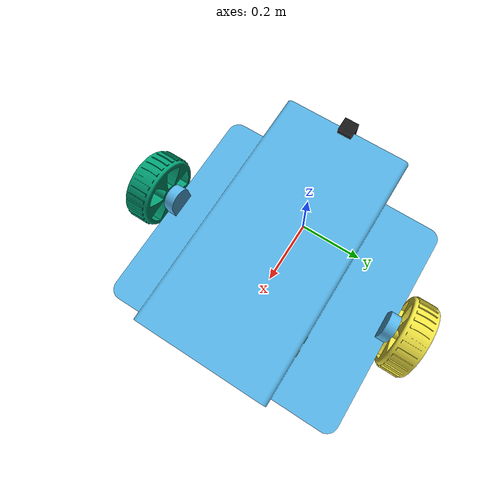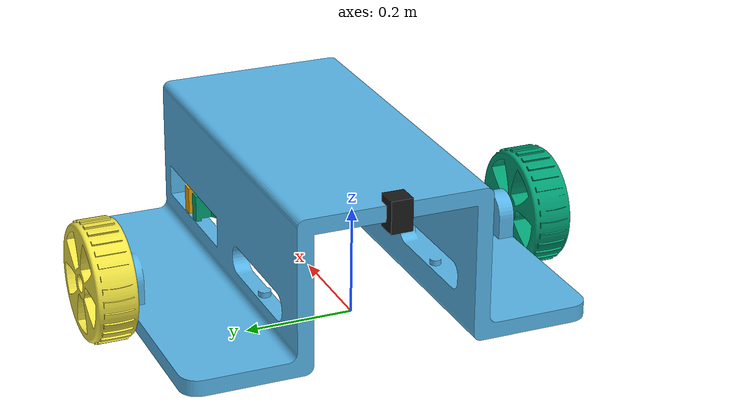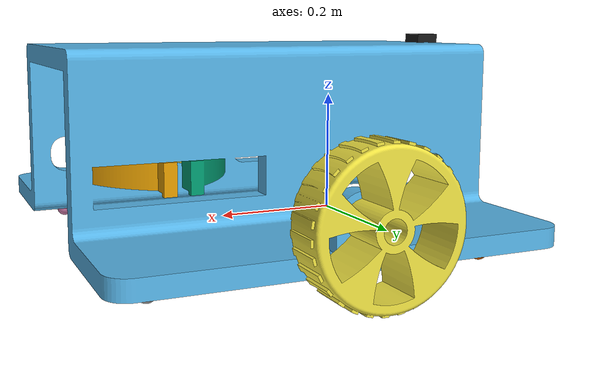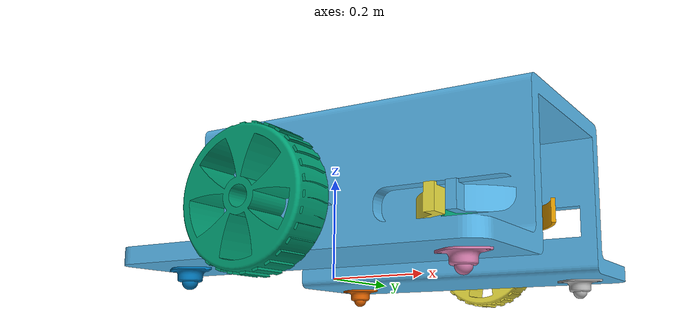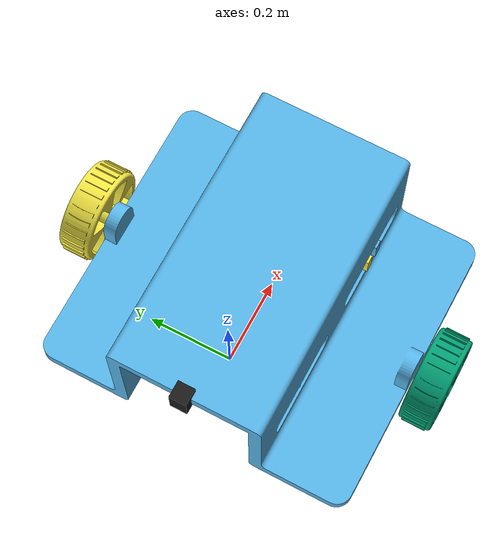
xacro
<?xml version="1.0"?>

<robot xmlns:xacro="http://www.ros.org/wiki/xacro"
       name="retreival_robot">

  <!--                       BASE LINK                        -->

  <link name="base_link">
    <inertial>
      <origin xyz="0 0 0" rpy="0 0 0"/>
      <mass value="0.001"/>
      <inertia
        ixx="0.000001"
        ixy="0"
        ixz="0"
        iyy="0.000001"
        iyz="0"
        izz="0.000001"/>
    </inertial>
  </link>

  <!--                 BASE TO CAD ASSEMBLY                   -->

  <joint name="base_to_chassis_joint" type="fixed">
    <parent link="base_link"/>
    <child link="chassis_link"/>

    <origin xyz="0 0 0"
            rpy="1.570796 0 0"/>
  </joint>

  <!--                       CHASSIS                          -->

  <link name="chassis_link">

    <visual>
      <origin xyz="0 0 0" rpy="0 0 0"/>
      <geometry>
        <mesh
          filename="package://retreival_robot/meshes/Chasis_Chassis_new.stl"
          scale="0.001 0.001 0.001"/>
      </geometry>
    </visual>

    <collision>
      <origin xyz="0 0 0" rpy="0 0 0"/>
      <geometry>
        <mesh
          filename="package://retreival_robot/meshes/Chasis_Chassis_new.stl"
          scale="0.001 0.001 0.001"/>
      </geometry>
    </collision>

    <inertial>
      <origin xyz="0 0 0" rpy="0 0 0"/>
      <mass value="10.0"/>
      <inertia
        ixx="0.60"
        ixy="0"
        ixz="0"
        iyy="0.60"
        iyz="0"
        izz="0.60"/>
    </inertial>

  </link>

  <!--                    LEFT DRIVE WHEEL                    -->

  <link name="left_wheel_link">

    <visual>
      <origin xyz="0 0 0" rpy="0 0 0"/>
      <geometry>
        <mesh
          filename="package://retreival_robot/meshes/Wheel_left.stl"
          scale="0.001 0.001 0.001"/>
      </geometry>
    </visual>

    <collision>
      <origin xyz="0 0 0" rpy="0 0 0"/>
      <geometry>
        <mesh
          filename="package://retreival_robot/meshes/Wheel_left.stl"
          scale="0.001 0.001 0.001"/>
      </geometry>
    </collision>

    <inertial>
      <origin xyz="0 0 0" rpy="0 0 0"/>
      <mass value="1.0"/>
      <inertia
        ixx="0.008"
        ixy="0"
        ixz="0"
        iyy="0.008"
        iyz="0"
        izz="0.008"/>
    </inertial>

  </link>

  <joint name="left_wheel_joint" type="continuous">

    <parent link="chassis_link"/>
    <child link="left_wheel_link"/>

    <origin xyz="0.15 0.0725 0.38"
            rpy="0 0 0"/>

    <axis xyz="0 0 1"/>

  </joint>

  <!--                   RIGHT DRIVE WHEEL                    -->

  <link name="right_wheel_link">

    <visual>
      <origin xyz="0 0 0" rpy="0 0 0"/>
      <geometry>
        <mesh
          filename="package://retreival_robot/meshes/Wheel_right.stl"
          scale="0.001 0.001 0.001"/>
      </geometry>
    </visual>

    <collision>
      <origin xyz="0 0 0" rpy="0 0 0"/>
      <geometry>
        <mesh
          filename="package://retreival_robot/meshes/Wheel_right.stl"
          scale="0.001 0.001 0.001"/>
      </geometry>
    </collision>

    <inertial>
      <origin xyz="0 0 0" rpy="0 0 0"/>
      <mass value="1.0"/>
      <inertia
        ixx="0.008"
        ixy="0"
        ixz="0"
        iyy="0.008"
        iyz="0"
        izz="0.008"/>
    </inertial>

  </link>

  <joint name="right_wheel_joint" type="continuous">

    <parent link="chassis_link"/>
    <child link="right_wheel_link"/>

    <origin xyz="0.15 0.0725 -0.38"
            rpy="0 0 0"/>

    <axis xyz="0 0 1"/>

  </joint>

  <!--                       CASTER 1                         -->

  <link name="caster_1_link">

    <visual>
      <origin xyz="0 0 0" rpy="0 0 0"/>
      <geometry>
        <mesh
          filename="package://retreival_robot/meshes/caster_1.stl"
          scale="0.001 0.001 0.001"/>
      </geometry>
    </visual>

    <collision>
      <origin xyz="0 0 0" rpy="0 0 0"/>
      <geometry>
        <mesh
          filename="package://retreival_robot/meshes/caster_1.stl"
          scale="0.001 0.001 0.001"/>
      </geometry>
    </collision>

    <inertial>
      <origin xyz="0 0 0" rpy="0 0 0"/>
      <mass value="0.25"/>
      <inertia
        ixx="0.0005"
        ixy="0"
        ixz="0"
        iyy="0.0005"
        iyz="0"
        izz="0.0005"/>
    </inertial>

  </link>

  <joint name="caster_1_joint" type="fixed">

    <parent link="chassis_link"/>
    <child link="caster_1_link"/>

    <origin xyz="-0.11496 0 0.27908"
            rpy="0 0 0"/>

  </joint>

  <!--                       CASTER 2                         -->

  <link name="caster_2_link">

    <visual>
      <origin xyz="0 0 0" rpy="0 0 0"/>
      <geometry>
        <mesh
          filename="package://retreival_robot/meshes/caster_2.stl"
          scale="0.001 0.001 0.001"/>
      </geometry>
    </visual>

    <collision>
      <origin xyz="0 0 0" rpy="0 0 0"/>
      <geometry>
        <mesh
          filename="package://retreival_robot/meshes/caster_2.stl"
          scale="0.001 0.001 0.001"/>
      </geometry>
    </collision>

    <inertial>
      <origin xyz="0 0 0" rpy="0 0 0"/>
      <mass value="0.25"/>
      <inertia
        ixx="0.0005"
        ixy="0"
        ixz="0"
        iyy="0.0005"
        iyz="0"
        izz="0.0005"/>
    </inertial>

  </link>

  <joint name="caster_2_joint" type="fixed">

    <parent link="chassis_link"/>
    <child link="caster_2_link"/>

    <origin xyz="-0.11496 0 -0.27908"
            rpy="0 0 0"/>

  </joint>

  <!--                       CASTER 3                         -->

  <link name="caster_3_link">

    <visual>
      <origin xyz="0 0 0" rpy="0 0 0"/>
      <geometry>
        <mesh
          filename="package://retreival_robot/meshes/caster_3.stl"
          scale="0.001 0.001 0.001"/>
      </geometry>
    </visual>

    <collision>
      <origin xyz="0 0 0" rpy="0 0 0"/>
      <geometry>
        <mesh
          filename="package://retreival_robot/meshes/caster_3.stl"
          scale="0.001 0.001 0.001"/>
      </geometry>
    </collision>

    <inertial>
      <origin xyz="0 0 0" rpy="0 0 0"/>
      <mass value="0.25"/>
      <inertia
        ixx="0.0005"
        ixy="0"
        ixz="0"
        iyy="0.0005"
        iyz="0"
        izz="0.0005"/>
    </inertial>

  </link>

  <joint name="caster_3_joint" type="fixed">

    <parent link="chassis_link"/>
    <child link="caster_3_link"/>

    <origin xyz="0.41496 0 0.27908"
            rpy="0 0 0"/>

  </joint>

  <!--                       CASTER 4                         -->

  <link name="caster_4_link">

    <visual>
      <origin xyz="0 0 0" rpy="0 0 0"/>
      <geometry>
        <mesh
          filename="package://retreival_robot/meshes/caster_4.stl"
          scale="0.001 0.001 0.001"/>
      </geometry>
    </visual>

    <collision>
      <origin xyz="0 0 0" rpy="0 0 0"/>
      <geometry>
        <mesh
          filename="package://retreival_robot/meshes/caster_4.stl"
          scale="0.001 0.001 0.001"/>
      </geometry>
    </collision>

    <inertial>
      <origin xyz="0 0 0" rpy="0 0 0"/>
      <mass value="0.25"/>
      <inertia
        ixx="0.0005"
        ixy="0"
        ixz="0"
        iyy="0.0005"
        iyz="0"
        izz="0.0005"/>
    </inertial>

  </link>

  <joint name="caster_4_joint" type="fixed">

    <parent link="chassis_link"/>
    <child link="caster_4_link"/>

    <origin xyz="0.41496 0 -0.27908"
            rpy="0 0 0"/>

  </joint>

  <!--                 RIGHT FRONT GRIPPER                    -->

  <link name="gripper_right_front_link">

    <visual>
      <origin xyz="0 0 0"
              rpy="0 3.14159265359 3.14159265359"/>
      <geometry>
        <mesh
          filename="package://retreival_robot/meshes/Gripper_left_front.stl"
          scale="0.001 0.001 0.001"/>
      </geometry>
    </visual>

    <collision>
      <origin xyz="0 0 0"
              rpy="0 3.14159265359 3.14159265359"/>
      <geometry>
        <mesh
          filename="package://retreival_robot/meshes/Gripper_left_front.stl"
          scale="0.001 0.001 0.001"/>
      </geometry>
    </collision>

    <inertial>
      <origin xyz="0 0 0"
              rpy="0 3.14159265359 3.14159265359"/>
      <mass value="0.25"/>
      <inertia
        ixx="0.001"
        ixy="0"
        ixz="0"
        iyy="0.001"
        iyz="0"
        izz="0.001"/>
    </inertial>

  </link>

  <joint name="gripper_right_front_joint" type="revolute">

    <parent link="chassis_link"/>
    <child link="gripper_right_front_link"/>

    <!-- Right front joint lowered by 5 cm in chassis Y -->
    <origin xyz="0.350 0.07973 -0.180"
            rpy="0 0 0"/>

    <axis xyz="0 1 0"/>

    <!-- CLOSED = 0, OPEN = +0.540 -->
    <limit
      lower="0.0"
      upper="0.540"
      effort="10.0"
      velocity="1.0"/>

  </joint>

  <!--                  LEFT FRONT GRIPPER                    -->

  <link name="gripper_left_front_link">

    <visual>
      <origin xyz="0 0 0" rpy="0 0 0"/>
      <geometry>
        <mesh
          filename="package://retreival_robot/meshes/Gripper_left_front.stl"
          scale="0.001 0.001 0.001"/>
      </geometry>
    </visual>

    <collision>
      <origin xyz="0 0 0" rpy="0 0 0"/>
      <geometry>
        <mesh
          filename="package://retreival_robot/meshes/Gripper_left_front.stl"
          scale="0.001 0.001 0.001"/>
      </geometry>
    </collision>

    <inertial>
      <origin xyz="0 0 0" rpy="0 0 0"/>
      <mass value="0.25"/>
      <inertia
        ixx="0.001"
        ixy="0"
        ixz="0"
        iyy="0.001"
        iyz="0"
        izz="0.001"/>
    </inertial>

  </link>

  <joint name="gripper_left_front_joint" type="revolute">

    <parent link="chassis_link"/>
    <child link="gripper_left_front_link"/>

    <origin xyz="0.350 0.12973 0.180"
            rpy="0 0 0"/>

    <axis xyz="0 1 0"/>

    <!-- CLOSED = 0, OPEN = -0.540 -->
    <limit
      lower="-0.540"
      upper="0.0"
      effort="10.0"
      velocity="1.0"/>

  </joint>

  <!--                  RIGHT BACK GRIPPER                    -->

  <link name="gripper_right_back_link">

    <visual>
      <origin xyz="0 0 0"
              rpy="0 3.14159265359 3.14159265359"/>
      <geometry>
        <mesh
          filename="package://retreival_robot/meshes/Gripper_left_back.stl"
          scale="0.001 0.001 0.001"/>
      </geometry>
    </visual>

    <collision>
      <origin xyz="0 0 0"
              rpy="0 3.14159265359 3.14159265359"/>
      <geometry>
        <mesh
          filename="package://retreival_robot/meshes/Gripper_left_back.stl"
          scale="0.001 0.001 0.001"/>
      </geometry>
    </collision>

    <inertial>
      <origin xyz="0 0 0"
              rpy="0 3.14159265359 3.14159265359"/>
      <mass value="0.25"/>
      <inertia
        ixx="0.001"
        ixy="0"
        ixz="0"
        iyy="0.001"
        iyz="0"
        izz="0.001"/>
    </inertial>

  </link>

  <joint name="gripper_right_back_joint" type="revolute">

    <parent link="chassis_link"/>
    <child link="gripper_right_back_link"/>

    <!-- Right back joint lowered by 5 cm in chassis Y -->
    <origin xyz="0.310 0.07973 -0.180"
            rpy="0 0 0"/>

    <axis xyz="0 1 0"/>

    <!-- CLOSED = 0, OPEN = -0.540 -->
    <limit
      lower="-0.540"
      upper="0.0"
      effort="10.0"
      velocity="1.0"/>

  </joint>

  <!--                   LEFT BACK GRIPPER                    -->

  <link name="gripper_left_back_link">

    <visual>
      <origin xyz="0 0 0" rpy="0 0 0"/>
      <geometry>
        <mesh
          filename="package://retreival_robot/meshes/Gripper_left_back.stl"
          scale="0.001 0.001 0.001"/>
      </geometry>
    </visual>

    <collision>
      <origin xyz="0 0 0" rpy="0 0 0"/>
      <geometry>
        <mesh
          filename="package://retreival_robot/meshes/Gripper_left_back.stl"
          scale="0.001 0.001 0.001"/>
      </geometry>
    </collision>

    <inertial>
      <origin xyz="0 0 0" rpy="0 0 0"/>
      <mass value="0.25"/>
      <inertia
        ixx="0.001"
        ixy="0"
        ixz="0"
        iyy="0.001"
        iyz="0"
        izz="0.001"/>
    </inertial>

  </link>

  <joint name="gripper_left_back_joint" type="revolute">

    <parent link="chassis_link"/>
    <child link="gripper_left_back_link"/>

    <origin xyz="0.310 0.12973 0.180"
            rpy="0 0 0"/>

    <axis xyz="0 1 0"/>

    <!-- CLOSED = 0, OPEN = +0.540 -->
    <limit
      lower="0.0"
      upper="0.540"
      effort="10.0"
      velocity="1.0"/>

  </joint>

<!-- RGB-D CAMERA LINK -->
<link name="camera_link">
  <visual>
    <geometry>
      <box size="0.04 0.06 0.04"/>
    </geometry>
    <material name="camera_black">
      <color rgba="0.1 0.1 0.1 1.0"/>
    </material>
  </visual>

  <collision>
    <geometry>
      <box size="0.04 0.06 0.04"/>
    </geometry>
  </collision>

  <inertial>
    <mass value="0.05"/>
    <inertia ixx="0.0000217" ixy="0" ixz="0"
             iyy="0.0000133" iyz="0"
             izz="0.0000217"/>
  </inertial>
</link>

<!-- FIX CAMERA TO CHASSIS -->
<joint name="chassis_to_camera_joint" type="fixed">
  <parent link="chassis_link"/>
  <child link="camera_link"/>

  <!-- Position in meters, relative to chassis_link -->
  <origin xyz="-0.190 0.275 0.000" rpy="0 3.141592653589793 0"/>
</joint>

<!-- GAZEBO SIM RGB-D CAMERA -->
<gazebo reference="camera_link">
  <sensor name="rgbd_camera" type="rgbd_camera">
    <always_on>true</always_on>
    <update_rate>30</update_rate>
    <visualize>true</visualize>

    <topic>camera</topic>

    <camera>
      <horizontal_fov>1.047</horizontal_fov>

      <image>
        <width>640</width>
        <height>480</height>
        <format>R8G8B8</format>
      </image>

      <clip>
        <near>0.1</near>
        <far>10.0</far>
      </clip>

      <depth_camera>
        <clip>
          <near>0.1</near>
          <far>10.0</far>
        </clip>
      </depth_camera>
    </camera>
  </sensor>
</gazebo>

  <!--                    ROS 2 CONTROL                       -->

  <ros2_control name="GazeboSystem" type="system">

    <hardware>
      <plugin>gz_ros2_control/GazeboSimSystem</plugin>
    </hardware>

    <!-- LEFT WHEEL VELOCITY CONTROL -->
    <joint name="left_wheel_joint">
      <command_interface name="velocity"/>
      <state_interface name="position"/>
      <state_interface name="velocity"/>
    </joint>

    <!-- RIGHT WHEEL VELOCITY CONTROL -->
    <joint name="right_wheel_joint">
      <command_interface name="velocity"/>
      <state_interface name="position"/>
      <state_interface name="velocity"/>
    </joint>

    <!-- RIGHT FRONT GRIPPER POSITION CONTROL -->
    <joint name="gripper_right_front_joint">
      <command_interface name="position"/>
      <state_interface name="position"/>
      <state_interface name="velocity"/>
    </joint>

    <!-- LEFT FRONT GRIPPER POSITION CONTROL -->
    <joint name="gripper_left_front_joint">
      <command_interface name="position"/>
      <state_interface name="position"/>
      <state_interface name="velocity"/>
    </joint>

    <!-- RIGHT BACK GRIPPER POSITION CONTROL -->
    <joint name="gripper_right_back_joint">
      <command_interface name="position"/>
      <state_interface name="position"/>
      <state_interface name="velocity"/>
    </joint>

    <!-- LEFT BACK GRIPPER POSITION CONTROL -->
    <joint name="gripper_left_back_joint">
      <command_interface name="position"/>
      <state_interface name="position"/>
      <state_interface name="velocity"/>
    </joint>

  </ros2_control>

  <!--              GAZEBO ROS 2 CONTROL PLUGIN               -->

  <gazebo>
    <plugin
      filename="libgz_ros2_control-system.so"
      name="gz_ros2_control::GazeboSimROS2ControlPlugin">

      <parameters>$(find retreival_robot)/config/controllers.yaml</parameters>

    </plugin>
  </gazebo>

  <!--                   WHEEL TRACTION                       -->

  <gazebo reference="left_wheel_link">
    <mu1>2.0</mu1>
    <mu2>2.0</mu2>
    <kp>1000000.0</kp>
    <kd>100.0</kd>
  </gazebo>

  <gazebo reference="right_wheel_link">
    <mu1>2.0</mu1>
    <mu2>2.0</mu2>
    <kp>1000000.0</kp>
    <kd>100.0</kd>
  </gazebo>

</robot>
